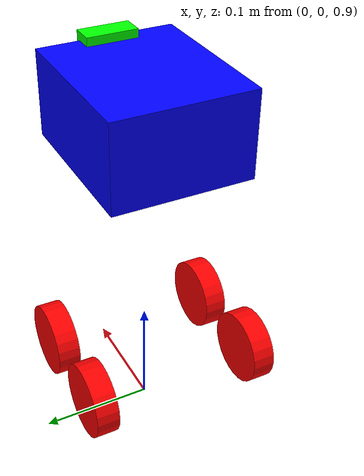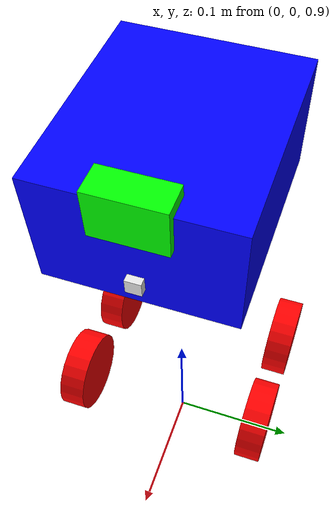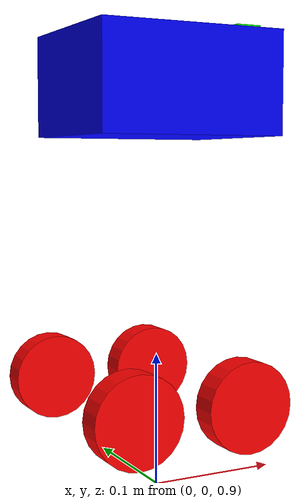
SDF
<sdf version="1.6">
<model name='adeept_awr' canonical_link='chassis'>
    <pose>0 0 1 0 0 0</pose>
        <link name='chassis'>
        <pose relative_to='__model__'>0 0 0.2 0 0 0</pose>

        <inertial>
            <mass>2</mass>
            <inertia>
                <ixx>0.000303125</ixx>
                <ixy>0</ixy>
                <ixz>0</ixz>
                <iyy>0.000359375</iyy>
                <iyz>0</iyz>
                <izz>0.000542708</izz>
            </inertia>
        </inertial>

        <visual name='visual'>
            <geometry>
                <box>
                    <size>0.14 0.12 0.075</size>
                </box>
            </geometry>
            <material>
                <ambient>0.0 0.0 1.0 1</ambient>
                <diffuse>0.0 0.0 1.0 1</diffuse>
                <specular>0.0 0.0 1.0 1</specular>
            </material>
        </visual>
        <collision name='collision'>
            <geometry>
                <box>
                    <size>0.14 0.12 0.075</size>
                </box>
            </geometry>
        </collision>
        </link>

        <link name='camera'>
            <pose relative_to='chassis'>0.065 0 0.03 0 0 0</pose>
            <inertial>
                <mass>0.01</mass>
                <inertia>
                    <ixx>3.4725e-06</ixx>
                    <ixy>0</ixy>
                    <ixz>0</ixz>
                    <iyy>4.21875e-06</iyy>
                    <iyz>0</iyz>
                    <izz>5.385e-06</izz>
                </inertia>
            </inertial>
            <visual name='visual'>
                <geometry>
                    <box>
                        <size>0.02 0.045 0.03</size>
                    </box>
                </geometry>
                <material>
                    <ambient>0.0 1.0 0.0 1</ambient>
                    <diffuse>0.0 1.0 0.0 1</diffuse>
                    <specular>0.0 1.0 0.0 1</specular>
                </material>
            </visual>
            <collision name='collision'>
                <geometry>
                    <box>
                        <size>0.02 0.045 0.03</size>
                    </box>
                </geometry>
            </collision>

            <sensor name='camera' type='camera'>
                <pose>0 0 0 0 0 0</pose>
                <topic>simulator_camera</topic>
                <update_rate>30</update_rate>
                <camera name='__default__'>
                    <horizontal_fov>1.0469999999999999</horizontal_fov>
                    <image>
                        <width>820</width>
                        <height>540</height>
                        <format>RGB_INT8</format>
                    </image>
                    <clip>
                        <near>0.01</near>
                        <far>100</far>
                    </clip>
                    <visibility_mask>4294967295</visibility_mask>
                    <lens>
                        <type>stereographic</type>
                        <scale_to_hfov>true</scale_to_hfov>
                        <cutoff_angle>1.5708</cutoff_angle>
                        <env_texture_size>256</env_texture_size>
                    </lens>
                </camera>
            </sensor>
        </link>

        <joint name='camera_servo_joint' type='revolute'>
            <pose relative_to='chassis'>0 0 0.05 0 0 0</pose>
            <parent>chassis</parent>
            <child>camera</child>
            <axis>
                <xyz>0 1 0</xyz>
                <limit>
                    <lower>-1.57076</lower>
                    <upper>0.1745</upper>
                </limit>
                <effort>
                    <min>-10</min>
                    <max>10</max>
                </effort>
            </axis>
        </joint>

        <plugin name="ignition::gazebo::systems::JointController" filename="libignition-gazebo-joint-controller-system.so">
            <joint_name>camera_servo_joint</joint_name>
        </plugin>

          <link name='ultrasonic'>
            <pose relative_to='chassis'>0.07 0 -0.02 0 0 0</pose>
            <inertial>
                <mass>0.05</mass>
                <inertia>
                    <ixx>8.3333e-09</ixx>
                    <iyy>8.3333e-09</iyy>
                    <izz>8.3333e-09</izz>
                  </inertia>
            </inertial>
            <visual name='visual'>
                <geometry>
                  <box>
                    <size>0.01 0.01 0.01</size>
                  </box>
                </geometry>
                <material>
                    <ambient>0.9 0.9 0.9 1</ambient>
                    <diffuse>0.9 0.9 0.9 1</diffuse>
                    <specular>0.9 0.9 0.9 1</specular>
                </material>
              </visual>
            <collision name='collision'>
              <geometry>
                <box>
                  <size>0.01 0.01 0.01</size>
                </box>
              </geometry>
            </collision>

            <sensor name='gpu_lidar' type='gpu_lidar'>
              <pose relative_to="ultrasonic">0 0 0 0 0 0</pose>
              <topic>simulator_ultrasonic</topic>
              <update_rate>20</update_rate>
              <lidar>
                <scan>
                  <horizontal>
                    <samples>3</samples>
                    <resolution>1</resolution>
                    <min_angle>-0.1308</min_angle>
                    <max_angle>0.1308</max_angle>
                  </horizontal>
                  <vertical>
                    <samples>1</samples>
                    <resolution>1</resolution>
                    <min_angle>0</min_angle>
                    <max_angle>0</max_angle>
                  </vertical>
                </scan>
                <range>
                  <min>0.08</min>
                  <max>10</max>
                  <resolution>0.01</resolution>
                </range>
                <noise>
                  <type>none</type>
                  <mean>0</mean>
                  <stddev>0</stddev>
                </noise>
                <visibility_mask>4294967295</visibility_mask>
              </lidar>
            </sensor>
            <enable_wind>false</enable_wind>
          </link>

          <joint name='ultrasonic_joint' type='fixed'>
            <pose relative_to="ultrasonic"/>
            <parent>chassis</parent>
            <child>ultrasonic</child>
          </joint>

        <include>
            <name>left_front_wheel</name>
            <uri>/home/daniel/ros2_ws/src/gazebo_simulator_nodes/worlds/wheel.sdf</uri>
            <pose relative_to="chassis">0.03 0.075 -0.025 -1.5707 0 0</pose>
        </include>

        <joint name='left_front_wheel_joint' type='revolute'>
            <pose relative_to='left_front_wheel'/>
            <parent>chassis</parent>
            <child>left_front_wheel::wheel</child>
            <axis>
                <xyz>0 0 1</xyz>
                <limit>
                    <lower>-1.79769e+308</lower>
                    <upper>1.79769e+308</upper>
                </limit>
            </axis>
        </joint>

        <include>
            <name>right_front_wheel</name>
            <uri>/home/daniel/ros2_ws/src/gazebo_simulator_nodes/worlds/wheel.sdf</uri>
            <pose relative_to="chassis">0.03 -0.075 -0.025 -1.5707 0 0</pose>
        </include>

        <joint name='right_front_wheel_joint' type='revolute'>
            <pose relative_to='right_front_wheel'/>
            <parent>chassis</parent>
            <child>right_front_wheel::wheel</child>
            <axis>
                <xyz>0 0 1</xyz>
                <limit>
                    <lower>-1.79769e+308</lower>
                    <upper>1.79769e+308</upper>
                </limit>
            </axis>
        </joint>

        <include>
            <name>left_rear_wheel</name>
            <uri>/home/daniel/ros2_ws/src/gazebo_simulator_nodes/worlds/wheel.sdf</uri>
            <pose relative_to="chassis">-0.055 0.075 -0.025 -1.5707 0 0</pose>
        </include>

        <joint name='left_rear_wheel_joint' type='revolute'>
            <pose relative_to='left_rear_wheel'/>
            <parent>chassis</parent>
            <child>left_rear_wheel::wheel</child>
            <axis>
                <xyz>0 0 1</xyz>
                <limit>
                    <lower>-1.79769e+308</lower>
                    <upper>1.79769e+308</upper>
                </limit>
            </axis>
        </joint>

        <include>
            <name>right_rear_wheel</name>
            <uri>/home/daniel/ros2_ws/src/gazebo_simulator_nodes/worlds/wheel.sdf</uri>
            <pose relative_to="chassis">-0.055 -0.075 -0.025 -1.5707 0 0</pose>
        </include>

        <joint name='right_rear_wheel_joint' type='revolute'>
            <pose relative_to='right_rear_wheel'/>
            <parent>chassis</parent>
            <child>right_rear_wheel::wheel</child>
            <axis>
                <xyz>0 0 1</xyz>
                <limit>
                    <lower>-1.79769e+308</lower>
                    <upper>1.79769e+308</upper>
                </limit>
            </axis>
        </joint>

    <plugin name='ignition::gazebo::systems::DiffDrive' filename='libignition-gazebo-diff-drive-system.so'>
        <left_joint>left_front_wheel_joint</left_joint>
        <right_joint>right_front_wheel_joint</right_joint>
        <wheel_separation>0.145</wheel_separation>
        <wheel_radius>0.0325</wheel_radius>
        <odom_publish_frequency>1</odom_publish_frequency>
    </plugin>

    <plugin name='ignition::gazebo::systems::DiffDrive' filename='libignition-gazebo-diff-drive-system.so'>
        <left_joint>left_rear_wheel_joint</left_joint>
        <right_joint>right_rear_wheel_joint</right_joint>
        <wheel_separation>0.145</wheel_separation>
        <wheel_radius>0.0325</wheel_radius>
        <odom_publish_frequency>1</odom_publish_frequency>
    </plugin>

</model>
</sdf>

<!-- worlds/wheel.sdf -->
<!-- Generic Wheel -->

<sdf version="1.6">
    <model name="wheel">
        <link name="wheel">
            <inertial>
                <mass>0.1</mass>
                <inertia>
                    <ixx>2.60416667e-06</ixx>
                    <ixy>0</ixy>
                    <ixz>0</ixz>
                    <iyy>2.60416667e-06</iyy>
                    <iyz>0</iyz>
                    <izz>8.68055556e-07</izz>
                </inertia>
            </inertial>
            <visual name='visual'>
                <geometry>
                    <cylinder>
                        <radius>0.0325</radius>
                        <length>0.02</length>
                    </cylinder>
                </geometry>
                <material>
                    <ambient>1.0 0.0 0.0 1</ambient>
                    <diffuse>1.0 0.0 0.0 1</diffuse>
                    <specular>1.0 0.0 0.0 1</specular>
                </material>
            </visual>
            <collision name='collision'>
                <geometry>
                    <cylinder>
                        <radius>0.035</radius>
                        <length>0.02</length>
                    </cylinder>
                </geometry>
            </collision>
        </link>
    </model>
</sdf>
